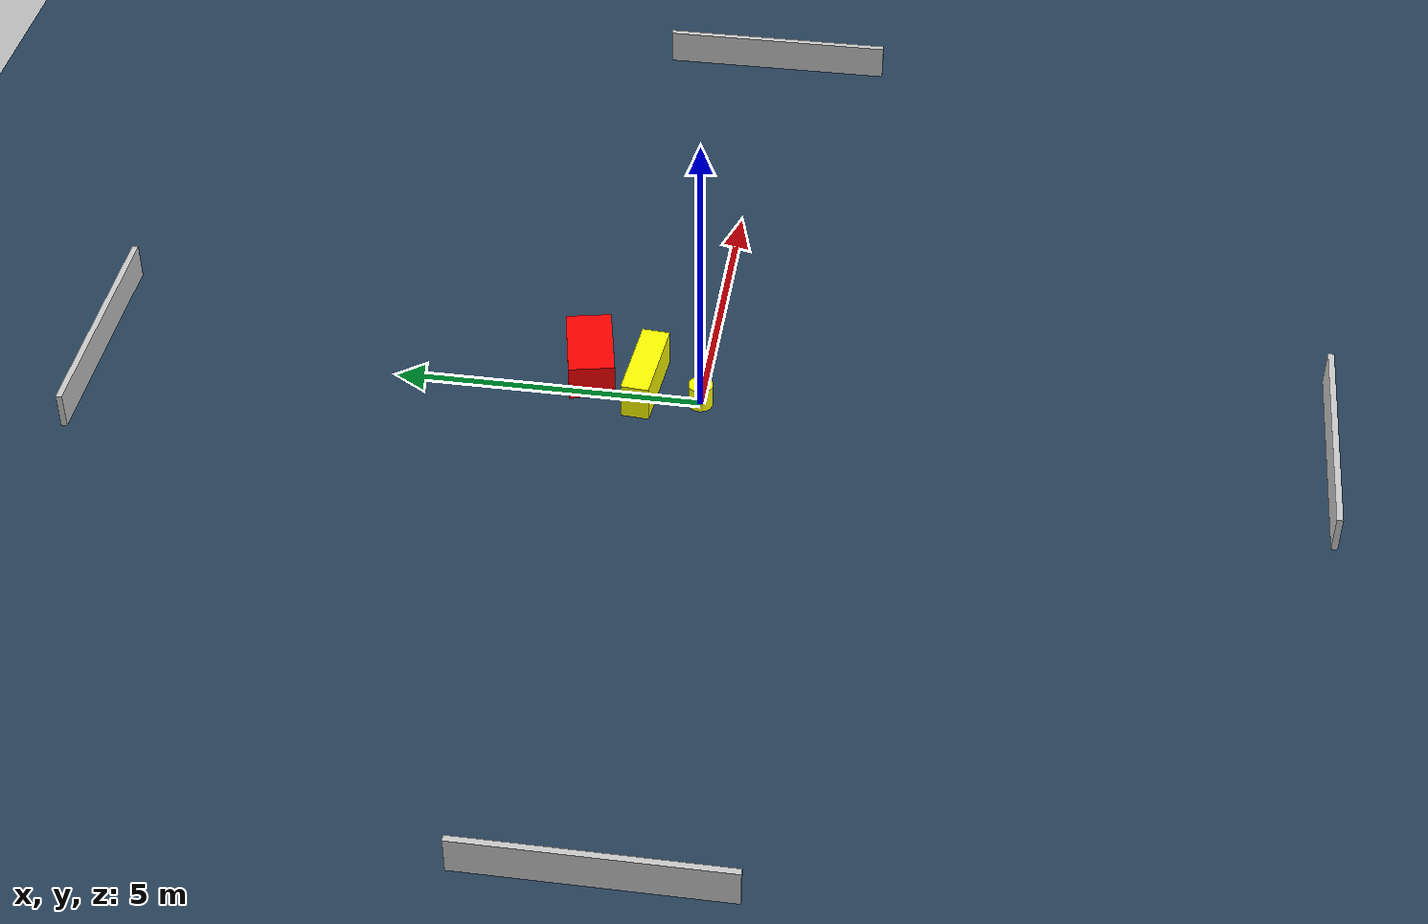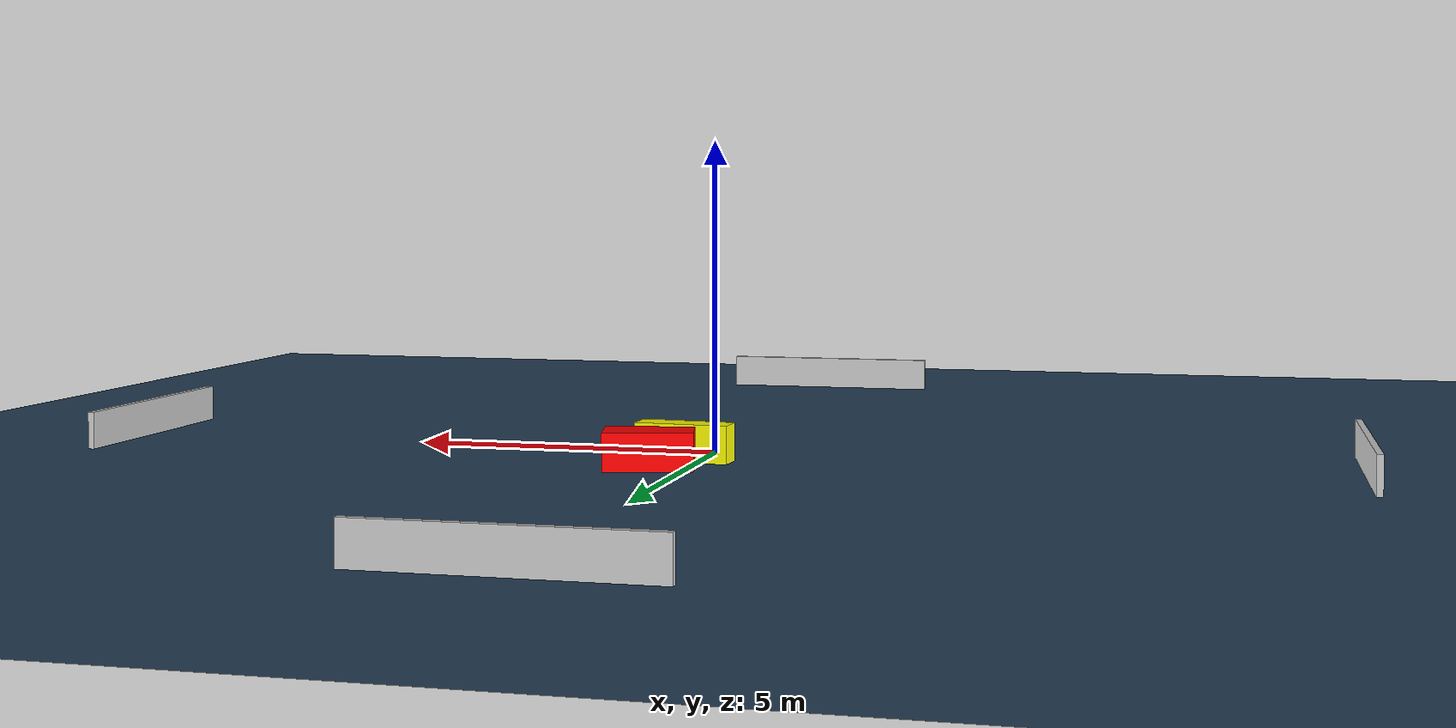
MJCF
<?xml version="1.0" ?>
<mujoco model="generated_environment">
  <option timestep="0.01" integrator="RK4" cone="elliptic"/>
  <default>
    <geom density="1"/>
  </default>
  <asset>
    <texture builtin="gradient" height="3072" name="skybox" rgb1="0.3 0.5 0.7" rgb2="0 0 0" type="skybox" width="512"/>
    <texture builtin="checker" height="300" name="groundplane" rgb1="0.2 0.3 0.4" rgb2="0.1 0.2 0.3" type="2d" width="300"/>
    <material name="groundplane" reflectance="0.2" texrepeat="5 5" texture="groundplane"/>
  </asset>
  <worldbody>
    <light dir="0 0 -1" directional="true" pos="0 0 1.5"/>
    <geom condim="3" friction="0.5 0.005 0.001" material="groundplane" name="floor" pos="0 0 0" size="0 0 0.05" type="plane"/>
    <body name="walls">
      <geom name="wall_1" condim="4" pos="-10.0 0.0 0.3" rgba="0.800000011920929 0.800000011920929 0.800000011920929 1.0" size="0.05 2.0 0.3" type="box"/>
      <geom name="wall_2" condim="4" pos="10.0 0.0 0.3" rgba="0.800000011920929 0.800000011920929 0.800000011920929 1.0" size="0.05 2.0 0.3" type="box"/>
      <geom name="wall_3" condim="4" pos="0.0 -10.0 0.3" rgba="0.800000011920929 0.800000011920929 0.800000011920929 1.0" size="2.0 0.05 0.3" type="box"/>
      <geom name="wall_4" condim="4" pos="0.0 10.0 0.3" rgba="0.800000011920929 0.800000011920929 0.800000011920929 1.0" size="2.0 0.05 0.3" type="box"/>
    </body>
    <body name="robot">
      <joint name="joint_x" type="slide" pos="0 0 0" axis="1 0 0"/>
      <joint name="joint_y" type="slide" pos="0 0 0" axis="0 1 0"/>
      <geom name="robot" type="cylinder" pos="0.0 0.0 0.2" size="0.2 0.2 0.0" mass="5.0" friction="1.0 0.005 0.0001" condim="4" rgba="1.0 1.0 0.0 1.0"/>
    </body>
    <body name="obstacle_1_movable">
      <geom name="obstacle_1_movable" condim="4" pos="0.264638797434104 0.9408937841512469 0.3" euler="0 0 265.6530900783314" friction="0.0 0.005 0.001" rgba="1.0 1.0 0.0 1.0" size="0.2281341843554567 0.7520316221955516 0.3" type="box" mass="0.1"/>
      <joint type="free"/>
    </body>
    <body name="obstacle_2_static">
      <geom name="obstacle_2_static" condim="4" pos="0.5782434219681043 1.9050227339534576 0.3" euler="0 0 102.06691243176817" friction="0.0 0.005 0.001" rgba="1.0 0.0 0.0 1.0" size="0.3737175093609041 0.6919053388827716 0.3" type="box"/>
    </body>
  </worldbody>
  <actuator>
    <motor name="actuator_x" joint="joint_x" gear="1" ctrlrange="-1 1"/>
    <motor name="actuator_y" joint="joint_y" gear="1" ctrlrange="-1 1"/>
  </actuator>
</mujoco>
